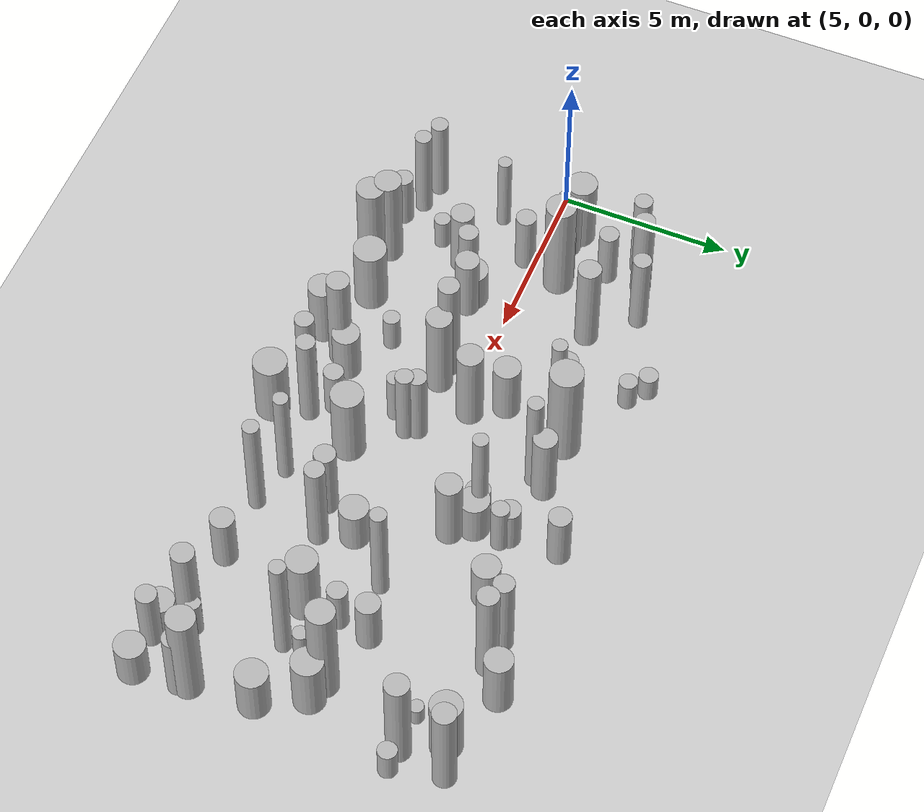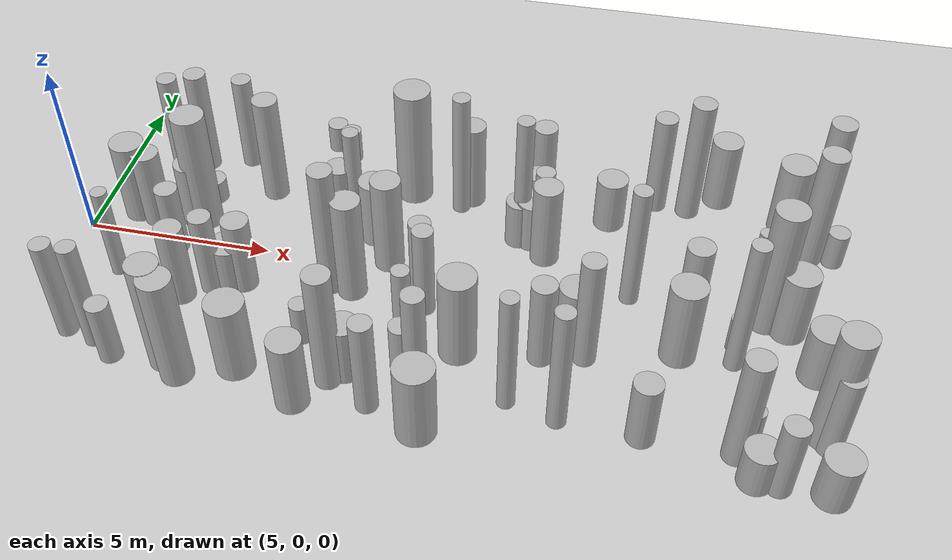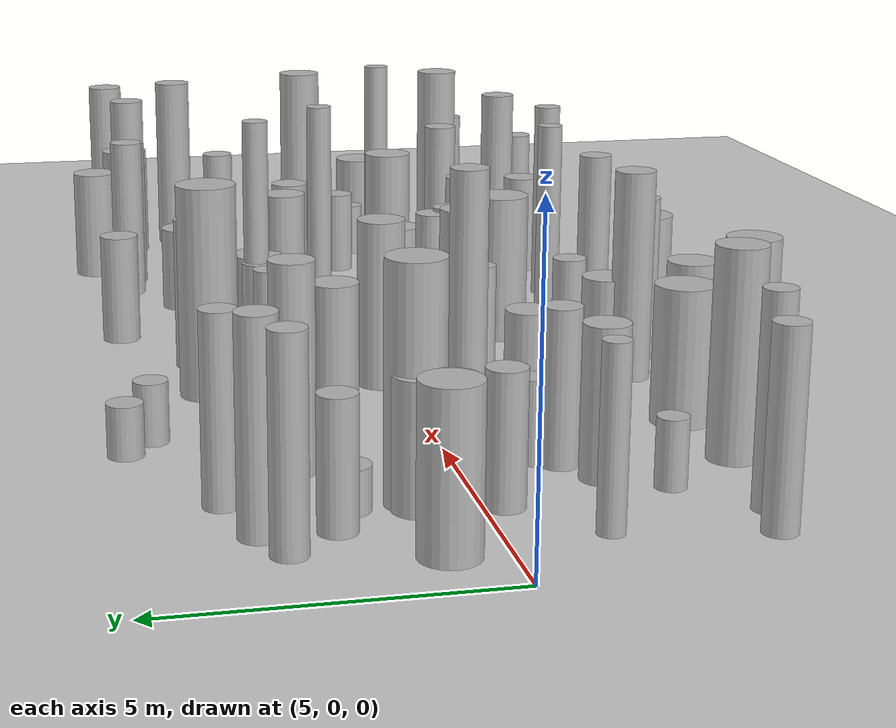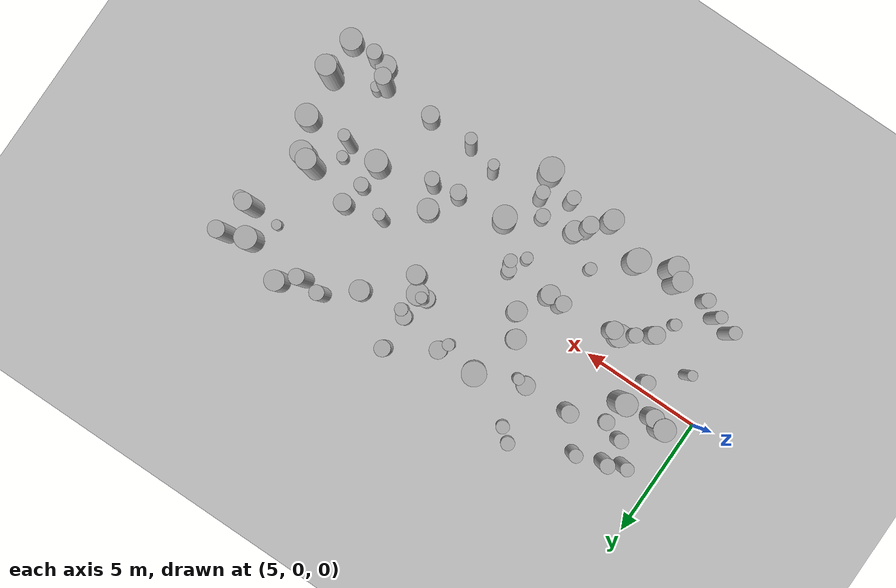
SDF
<sdf version="1.4">
 <world name="default">
  <include><uri>model://ground_plane</uri></include>
  <include><uri>model://sun</uri></include>
  <model name="forest">
   <static>true</static>
   <link name="cylinder3">
    <pose>22.47887445626342 -4.178614569205978 1.642320482933423 0 0 0</pose>
    <visual name="visual">
     <geometry>
      <cylinder><radius>0.33752390658815884</radius><length>3.284640965866846</length></cylinder>
     </geometry>
    </visual>
    <collision name="collision">
     <geometry>
      <cylinder><radius>0.33752390658815884</radius><length>3.284640965866846</length></cylinder>
     </geometry>
     <max_contacts>0</max_contacts>
    </collision>
   </link>
   <link name="cylinder4">
    <pose>14.5302731458887 -3.3634032457613463 0.8396608742634206 0 0 0</pose>
    <visual name="visual">
     <geometry>
      <cylinder><radius>0.2939214647751605</radius><length>1.6793217485268412</length></cylinder>
     </geometry>
    </visual>
    <collision name="collision">
     <geometry>
      <cylinder><radius>0.2939214647751605</radius><length>1.6793217485268412</length></cylinder>
     </geometry>
     <max_contacts>0</max_contacts>
    </collision>
   </link>
   <link name="cylinder5">
    <pose>18.362684909089495 -4.056848362321382 1.8538777930647994 0 0 0</pose>
    <visual name="visual">
     <geometry>
      <cylinder><radius>0.24213329332748434</radius><length>3.7077555861295988</length></cylinder>
     </geometry>
    </visual>
    <collision name="collision">
     <geometry>
      <cylinder><radius>0.24213329332748434</radius><length>3.7077555861295988</length></cylinder>
     </geometry>
     <max_contacts>0</max_contacts>
    </collision>
   </link>
   <link name="cylinder13">
    <pose>6.527799041859339 2.8709751118988 1.543872692518495 0 0 0</pose>
    <visual name="visual">
     <geometry><cylinder><radius>0.2687122442359387</radius><length>3.08774538503699</length></cylinder></geometry>
    </visual>
    <collision name="collision">
     <geometry><cylinder><radius>0.2687122442359387</radius><length>3.08774538503699</length></cylinder></geometry>
     <max_contacts>0</max_contacts>
    </collision>
   </link>
   <link name="cylinder16">
    <pose>10.526784670415744 -3.9707757080040986 1.1181079721017348 0 0 0</pose>
    <visual name="visual">
     <geometry>
      <cylinder><radius>0.48806112289139036</radius><length>2.2362159442034697</length></cylinder>
     </geometry>
    </visual>
    <collision name="collision">
     <geometry>
      <cylinder><radius>0.48806112289139036</radius><length>2.2362159442034697</length></cylinder>
     </geometry>
     <max_contacts>0</max_contacts>
    </collision>
   </link>
   <link name="cylinder18">
    <pose>7.4240206471141335 -4.251918299851472 0.9027344437147206 0 0 0</pose>
    <visual name="visual">
     <geometry>
      <cylinder><radius>0.2934277185561901</radius><length>1.8054688874294411</length></cylinder>
     </geometry>
    </visual>
    <collision name="collision">
     <geometry>
      <cylinder><radius>0.2934277185561901</radius><length>1.8054688874294411</length></cylinder>
     </geometry>
     <max_contacts>0</max_contacts>
    </collision>
   </link>
   <link name="cylinder19">
    <pose>16.74972533325966 4.350820737682305 0.9596957862691741 0 0 0</pose>
    <visual name="visual">
     <geometry>
      <cylinder><radius>0.330943244393582</radius><length>1.9193915725383481</length></cylinder>
     </geometry>
    </visual>
    <collision name="collision">
     <geometry>
      <cylinder><radius>0.330943244393582</radius><length>1.9193915725383481</length></cylinder>
     </geometry>
     <max_contacts>0</max_contacts>
    </collision>
   </link>
   <link name="cylinder21">
    <pose>13.937974852405098 -4.483488352646551 1.4200845603587593 0 0 0</pose>
    <visual name="visual">
     <geometry>
      <cylinder><radius>0.2839657664903985</radius><length>2.8401691207175186</length></cylinder>
     </geometry>
    </visual>
    <collision name="collision">
     <geometry>
      <cylinder><radius>0.2839657664903985</radius><length>2.8401691207175186</length></cylinder>
     </geometry>
     <max_contacts>0</max_contacts>
    </collision>
   </link>
   <link name="cylinder23">
    <pose>23.591305482721907 -0.12271582391579372 1.0166009628938495 0 0 0</pose>
    <visual name="visual">
     <geometry>
      <cylinder><radius>0.46206444477825864</radius><length>2.033201925787699</length></cylinder>
     </geometry>
    </visual>
    <collision name="collision">
     <geometry>
      <cylinder><radius>0.46206444477825864</radius><length>2.033201925787699</length></cylinder>
     </geometry>
     <max_contacts>0</max_contacts>
    </collision>
   </link>
   <link name="cylinder28">
    <pose>9.447276060925681 -1.22654271336321 0.6619986889347537 0 0 0</pose>
    <visual name="visual">
     <geometry>
      <cylinder><radius>0.4639562166751768</radius><length>1.3239973778695073</length></cylinder>
     </geometry>
    </visual>
    <collision name="collision">
     <geometry>
      <cylinder><radius>0.4639562166751768</radius><length>1.3239973778695073</length></cylinder>
     </geometry>
     <max_contacts>0</max_contacts>
    </collision>
   </link>
   <link name="cylinder31">
    <pose>9.23183586181289 -4.492843921649491 1.6333624161777784 0 0 0</pose>
    <visual name="visual">
     <geometry>
      <cylinder><radius>0.4136812708600509</radius><length>3.266724832355557</length></cylinder>
     </geometry>
    </visual>
    <collision name="collision">
     <geometry>
      <cylinder><radius>0.4136812708600509</radius><length>3.266724832355557</length></cylinder>
     </geometry>
     <max_contacts>0</max_contacts>
    </collision>
   </link>
   <link name="cylinder32">
    <pose>17.690212783013152 -2.2081494208562455 1.2673248724445154 0 0 0</pose>
    <visual name="visual">
     <geometry>
      <cylinder><radius>0.3199982120551544</radius><length>2.534649744889031</length></cylinder>
     </geometry>
    </visual>
    <collision name="collision">
     <geometry>
      <cylinder><radius>0.3199982120551544</radius><length>2.534649744889031</length></cylinder>
     </geometry>
     <max_contacts>0</max_contacts>
    </collision>
   </link>
   <link name="cylinder38">
    <pose>11.772968325162793 2.3713193202402127 1.2347113408801815 0 0 0</pose>
    <visual name="visual">
     <geometry>
      <cylinder><radius>0.22609128089160999</radius><length>2.469422681760363</length></cylinder>
     </geometry>
    </visual>
    <collision name="collision">
     <geometry>
      <cylinder><radius>0.22609128089160999</radius><length>2.469422681760363</length></cylinder>
     </geometry>
     <max_contacts>0</max_contacts>
    </collision>
   </link>
   <link name="cylinder49">
    <pose>15.244924607517909 -4.980480041222028 1.1135552518364316 0 0 0</pose>
    <visual name="visual">
     <geometry>
      <cylinder><radius>0.4966979918305741</radius><length>2.227110503672863</length></cylinder>
     </geometry>
    </visual>
    <collision name="collision">
     <geometry>
      <cylinder><radius>0.4966979918305741</radius><length>2.227110503672863</length></cylinder>
     </geometry>
     <max_contacts>0</max_contacts>
    </collision>
   </link>
   <link name="cylinder50">
    <pose>8.378996921225344 3.540174057202499 1.4279590609195483 0 0 0</pose>
    <visual name="visual">
     <geometry>
      <cylinder><radius>0.2707541495920716</radius><length>2.8559181218390965</length></cylinder>
     </geometry>
    </visual>
    <collision name="collision">
     <geometry>
      <cylinder><radius>0.2707541495920716</radius><length>2.8559181218390965</length></cylinder>
     </geometry>
     <max_contacts>0</max_contacts>
    </collision>
   </link>
   <link name="cylinder56">
    <pose>24.721061893447498 2.644003939974768 0.5281805942326888 0 0 0</pose>
    <visual name="visual">
     <geometry>
      <cylinder><radius>0.27994021403396574</radius><length>1.0563611884653776</length></cylinder>
     </geometry>
    </visual>
    <collision name="collision">
     <geometry>
      <cylinder><radius>0.27994021403396574</radius><length>1.0563611884653776</length></cylinder>
     </geometry>
     <max_contacts>0</max_contacts>
    </collision>
   </link>
   <link name="cylinder57">
    <pose>24.449768140828063 -3.287925950227529 1.765528564776506 0 0 0</pose>
    <visual name="visual">
     <geometry>
      <cylinder><radius>0.4193288217632054</radius><length>3.531057129553012</length></cylinder>
     </geometry>
    </visual>
    <collision name="collision">
     <geometry>
      <cylinder><radius>0.4193288217632054</radius><length>3.531057129553012</length></cylinder>
     </geometry>
     <max_contacts>0</max_contacts>
    </collision>
   </link>
   <link name="cylinder60">
    <pose>6.817045257781796 -3.8611030398118116 1.585568934438507 0 0 0</pose>
    <visual name="visual">
     <geometry>
      <cylinder><radius>0.24852022485572434</radius><length>3.171137868877014</length></cylinder>
     </geometry>
    </visual>
    <collision name="collision">
     <geometry>
      <cylinder><radius>0.24852022485572434</radius><length>3.171137868877014</length></cylinder>
     </geometry>
     <max_contacts>0</max_contacts>
    </collision>
   </link>
   <link name="cylinder65">
    <pose>7.1845712540753865 2.1157544129979486 0.980823992264615 0 0 0</pose>
    <visual name="visual">
     <geometry><cylinder><radius>0.2899675098013318</radius><length>1.96164798452923</length></cylinder></geometry>
    </visual>
    <collision name="collision">
     <geometry><cylinder><radius>0.2899675098013318</radius><length>1.96164798452923</length></cylinder></geometry>
     <max_contacts>0</max_contacts>
    </collision>
   </link>
   <link name="cylinder69">
    <pose>6.425788574674364 -1.4514245802739767 1.351874875211875 0 0 0</pose>
    <visual name="visual">
     <geometry>
      <cylinder><radius>0.20414401549664019</radius><length>2.70374975042375</length></cylinder>
     </geometry>
    </visual>
    <collision name="collision">
     <geometry>
      <cylinder><radius>0.20414401549664019</radius><length>2.70374975042375</length></cylinder>
     </geometry>
     <max_contacts>0</max_contacts>
    </collision>
   </link>
   <link name="cylinder70">
    <pose>14.10962209428424 -1.669597794237422 0.8710236489371816 0 0 0</pose>
    <visual name="visual">
     <geometry>
      <cylinder><radius>0.24028268609505826</radius><length>1.7420472978743633</length></cylinder>
     </geometry>
    </visual>
    <collision name="collision">
     <geometry>
      <cylinder><radius>0.24028268609505826</radius><length>1.7420472978743633</length></cylinder>
     </geometry>
     <max_contacts>0</max_contacts>
    </collision>
   </link>
   <link name="cylinder71">
    <pose>12.836077382744229 -3.9213283168496362 1.7799488736250846 0 0 0</pose>
    <visual name="visual">
     <geometry>
      <cylinder><radius>0.3387179983455981</radius><length>3.559897747250169</length></cylinder>
     </geometry>
    </visual>
    <collision name="collision">
     <geometry>
      <cylinder><radius>0.3387179983455981</radius><length>3.559897747250169</length></cylinder>
     </geometry>
     <max_contacts>0</max_contacts>
    </collision>
   </link>
   <link name="cylinder76">
    <pose>14.934039233461384 3.1806282967403963 1.2902992635008506 0 0 0</pose>
    <visual name="visual">
     <geometry>
      <cylinder><radius>0.35341982849496534</radius><length>2.580598527001701</length></cylinder>
     </geometry>
    </visual>
    <collision name="collision">
     <geometry>
      <cylinder><radius>0.35341982849496534</radius><length>2.580598527001701</length></cylinder>
     </geometry>
     <max_contacts>0</max_contacts>
    </collision>
   </link>
   <link name="cylinder78">
    <pose>13.17408756718443 -3.5818733198657613 0.844874332020402 0 0 0</pose>
    <visual name="visual">
     <geometry>
      <cylinder><radius>0.40805120420738106</radius><length>1.689748664040804</length></cylinder>
     </geometry>
    </visual>
    <collision name="collision">
     <geometry>
      <cylinder><radius>0.40805120420738106</radius><length>1.689748664040804</length></cylinder>
     </geometry>
     <max_contacts>0</max_contacts>
    </collision>
   </link>
   <link name="cylinder81">
    <pose>18.761883628997865 3.008375247907537 0.7686204943772541 0 0 0</pose>
    <visual name="visual">
     <geometry>
      <cylinder><radius>0.41461164967951025</radius><length>1.5372409887545082</length></cylinder>
     </geometry>
    </visual>
    <collision name="collision">
     <geometry>
      <cylinder><radius>0.41461164967951025</radius><length>1.5372409887545082</length></cylinder>
     </geometry>
     <max_contacts>0</max_contacts>
    </collision>
   </link>
   <link name="cylinder83">
    <pose>6.023353920046702 -3.6814882866755028 1.470136975742704 0 0 0</pose>
    <visual name="visual">
     <geometry>
      <cylinder><radius>0.2607214959013141</radius><length>2.940273951485408</length></cylinder>
     </geometry>
    </visual>
    <collision name="collision">
     <geometry>
      <cylinder><radius>0.2607214959013141</radius><length>2.940273951485408</length></cylinder>
     </geometry>
     <max_contacts>0</max_contacts>
    </collision>
   </link>
   <link name="cylinder84">
    <pose>20.964975878639045 -1.436609062028845 1.1974116911122923 0 0 0</pose>
    <visual name="visual">
     <geometry>
      <cylinder><radius>0.45776882402253655</radius><length>2.3948233822245846</length></cylinder>
     </geometry>
    </visual>
    <collision name="collision">
     <geometry>
      <cylinder><radius>0.45776882402253655</radius><length>2.3948233822245846</length></cylinder>
     </geometry>
     <max_contacts>0</max_contacts>
    </collision>
   </link>
   <link name="cylinder86">
    <pose>23.018340553018845 0.06344995393530173 1.8987352282740533 0 0 0</pose>
    <visual name="visual">
     <geometry>
      <cylinder><radius>0.41254935912584434</radius><length>3.7974704565481066</length></cylinder>
     </geometry>
    </visual>
    <collision name="collision">
     <geometry>
      <cylinder><radius>0.41254935912584434</radius><length>3.7974704565481066</length></cylinder>
     </geometry>
     <max_contacts>0</max_contacts>
    </collision>
   </link>
   <link name="cylinder87">
    <pose>24.36131951456332 4.116075351658193 1.7056352555718992 0 0 0</pose>
    <visual name="visual">
     <geometry>
      <cylinder><radius>0.3376474049315949</radius><length>3.4112705111437984</length></cylinder>
     </geometry>
    </visual>
    <collision name="collision">
     <geometry>
      <cylinder><radius>0.3376474049315949</radius><length>3.4112705111437984</length></cylinder>
     </geometry>
     <max_contacts>0</max_contacts>
    </collision>
   </link>
   <link name="cylinder93">
    <pose>13.30838271192249 3.1433814193410647 1.7605735277107786 0 0 0</pose>
    <visual name="visual">
     <geometry>
      <cylinder><radius>0.4868501336656447</radius><length>3.521147055421557</length></cylinder>
     </geometry>
    </visual>
    <collision name="collision">
     <geometry>
      <cylinder><radius>0.4868501336656447</radius><length>3.521147055421557</length></cylinder>
     </geometry>
     <max_contacts>0</max_contacts>
    </collision>
   </link>
   <link name="cylinder94">
    <pose>24.591810411638512 -4.876550889605959 0.6875817090059002 0 0 0</pose>
    <visual name="visual">
     <geometry>
      <cylinder><radius>0.4532019496774934</radius><length>1.3751634180118004</length></cylinder>
     </geometry>
    </visual>
    <collision name="collision">
     <geometry>
      <cylinder><radius>0.4532019496774934</radius><length>1.3751634180118004</length></cylinder>
     </geometry>
     <max_contacts>0</max_contacts>
    </collision>
   </link>
   <link name="cylinder96">
    <pose>14.42301588554755 -0.8533797484087193 1.3115467106881926 0 0 0</pose>
    <visual name="visual">
     <geometry>
      <cylinder><radius>0.2856992904782249</radius><length>2.6230934213763852</length></cylinder>
     </geometry>
    </visual>
    <collision name="collision">
     <geometry>
      <cylinder><radius>0.2856992904782249</radius><length>2.6230934213763852</length></cylinder>
     </geometry>
     <max_contacts>0</max_contacts>
    </collision>
   </link>
   <link name="cylinder97">
    <pose>9.488816892777379 2.3559886452171543 1.599064454588988 0 0 0</pose>
    <visual name="visual">
     <geometry>
      <cylinder><radius>0.3426206648430491</radius><length>3.198128909177976</length></cylinder>
     </geometry>
    </visual>
    <collision name="collision">
     <geometry>
      <cylinder><radius>0.3426206648430491</radius><length>3.198128909177976</length></cylinder>
     </geometry>
     <max_contacts>0</max_contacts>
    </collision>
   </link>
   <link name="cylinder98">
    <pose>7.913277019350353 1.8253304376781232 0.3373630469202576 0 0 0</pose>
    <visual name="visual">
     <geometry>
      <cylinder><radius>0.3207292804657071</radius><length>0.6747260938405152</length></cylinder>
     </geometry>
    </visual>
    <collision name="collision">
     <geometry>
      <cylinder><radius>0.3207292804657071</radius><length>0.6747260938405152</length></cylinder>
     </geometry>
     <max_contacts>0</max_contacts>
    </collision>
   </link>
   <link name="cylinder99">
    <pose>17.250758651355532 1.2876802213538916 1.224547317464865 0 0 0</pose>
    <visual name="visual">
     <geometry><cylinder><radius>0.3811344316260742</radius><length>2.44909463492973</length></cylinder></geometry>
    </visual>
    <collision name="collision">
     <geometry><cylinder><radius>0.3811344316260742</radius><length>2.44909463492973</length></cylinder></geometry>
     <max_contacts>0</max_contacts>
    </collision>
   </link>
   <link name="cylinder105">
    <pose>18.359290180835345 -1.0785733769576575 0.7356376778762803 0 0 0</pose>
    <visual name="visual">
     <geometry>
      <cylinder><radius>0.43109934591988736</radius><length>1.4712753557525606</length></cylinder>
     </geometry>
    </visual>
    <collision name="collision">
     <geometry>
      <cylinder><radius>0.43109934591988736</radius><length>1.4712753557525606</length></cylinder>
     </geometry>
     <max_contacts>0</max_contacts>
    </collision>
   </link>
   <link name="cylinder106">
    <pose>8.797738047917584 -4.132603483287523 1.6395599425629985 0 0 0</pose>
    <visual name="visual">
     <geometry>
      <cylinder><radius>0.4004202880946797</radius><length>3.279119885125997</length></cylinder>
     </geometry>
    </visual>
    <collision name="collision">
     <geometry>
      <cylinder><radius>0.4004202880946797</radius><length>3.279119885125997</length></cylinder>
     </geometry>
     <max_contacts>0</max_contacts>
    </collision>
   </link>
   <link name="cylinder112">
    <pose>20.312491145101397 -4.119083398005827 0.9621082513022088 0 0 0</pose>
    <visual name="visual">
     <geometry>
      <cylinder><radius>0.3529281954426491</radius><length>1.9242165026044176</length></cylinder>
     </geometry>
    </visual>
    <collision name="collision">
     <geometry>
      <cylinder><radius>0.3529281954426491</radius><length>1.9242165026044176</length></cylinder>
     </geometry>
     <max_contacts>0</max_contacts>
    </collision>
   </link>
   <link name="cylinder119">
    <pose>7.868676617294128 -2.8247099277777323 0.5354448152293785 0 0 0</pose>
    <visual name="visual">
     <geometry>
      <cylinder><radius>0.24026595648989432</radius><length>1.070889630458757</length></cylinder>
     </geometry>
    </visual>
    <collision name="collision">
     <geometry>
      <cylinder><radius>0.24026595648989432</radius><length>1.070889630458757</length></cylinder>
     </geometry>
     <max_contacts>0</max_contacts>
    </collision>
   </link>
   <link name="cylinder120">
    <pose>21.635465776234923 4.5317991502547805 1.0437399938678877 0 0 0</pose>
    <visual name="visual">
     <geometry>
      <cylinder><radius>0.411888447471063</radius><length>2.0874799877357755</length></cylinder>
     </geometry>
    </visual>
    <collision name="collision">
     <geometry>
      <cylinder><radius>0.411888447471063</radius><length>2.0874799877357755</length></cylinder>
     </geometry>
     <max_contacts>0</max_contacts>
    </collision>
   </link>
   <link name="cylinder121">
    <pose>23.439863491121642 -4.875254050461607 1.1071875540702996 0 0 0</pose>
    <visual name="visual">
     <geometry>
      <cylinder><radius>0.30713938901608967</radius><length>2.214375108140599</length></cylinder>
     </geometry>
    </visual>
    <collision name="collision">
     <geometry>
      <cylinder><radius>0.30713938901608967</radius><length>2.214375108140599</length></cylinder>
     </geometry>
     <max_contacts>0</max_contacts>
    </collision>
   </link>
   <link name="cylinder122">
    <pose>7.74344929973838 0.8697418842314502 0.981498908207938 0 0 0</pose>
    <visual name="visual">
     <geometry>
      <cylinder><radius>0.4086199873079246</radius><length>1.962997816415876</length></cylinder>
     </geometry>
    </visual>
    <collision name="collision">
     <geometry>
      <cylinder><radius>0.4086199873079246</radius><length>1.962997816415876</length></cylinder>
     </geometry>
     <max_contacts>0</max_contacts>
    </collision>
   </link>
   <link name="cylinder124">
    <pose>18.745103049111478 -2.0150255058308653 1.6631944352598773 0 0 0</pose>
    <visual name="visual">
     <geometry>
      <cylinder><radius>0.29209145761588795</radius><length>3.3263888705197546</length></cylinder>
     </geometry>
    </visual>
    <collision name="collision">
     <geometry>
      <cylinder><radius>0.29209145761588795</radius><length>3.3263888705197546</length></cylinder>
     </geometry>
     <max_contacts>0</max_contacts>
    </collision>
   </link>
   <link name="cylinder125">
    <pose>24.28484677751681 -1.4348304390415412 0.8265046835300012 0 0 0</pose>
    <visual name="visual">
     <geometry>
      <cylinder><radius>0.46730695647459125</radius><length>1.6530093670600023</length></cylinder>
     </geometry>
    </visual>
    <collision name="collision">
     <geometry>
      <cylinder><radius>0.46730695647459125</radius><length>1.6530093670600023</length></cylinder>
     </geometry>
     <max_contacts>0</max_contacts>
    </collision>
   </link>
   <link name="cylinder126">
    <pose>14.704265806915764 2.7841919738864913 1.8667542538427861 0 0 0</pose>
    <visual name="visual">
     <geometry>
      <cylinder><radius>0.23872528736286946</radius><length>3.7335085076855723</length></cylinder>
     </geometry>
    </visual>
    <collision name="collision">
     <geometry>
      <cylinder><radius>0.23872528736286946</radius><length>3.7335085076855723</length></cylinder>
     </geometry>
     <max_contacts>0</max_contacts>
    </collision>
   </link>
   <link name="cylinder127">
    <pose>7.211283098204682 3.1747129568757853 1.562202102027881 0 0 0</pose>
    <visual name="visual">
     <geometry>
      <cylinder><radius>0.30043938837338796</radius><length>3.124404204055762</length></cylinder>
     </geometry>
    </visual>
    <collision name="collision">
     <geometry>
      <cylinder><radius>0.30043938837338796</radius><length>3.124404204055762</length></cylinder>
     </geometry>
     <max_contacts>0</max_contacts>
    </collision>
   </link>
   <link name="cylinder129">
    <pose>9.798624180086144 -1.2412656075634398 1.0922095586414877 0 0 0</pose>
    <visual name="visual">
     <geometry>
      <cylinder><radius>0.35493811105969697</radius><length>2.1844191172829754</length></cylinder>
     </geometry>
    </visual>
    <collision name="collision">
     <geometry>
      <cylinder><radius>0.35493811105969697</radius><length>2.1844191172829754</length></cylinder>
     </geometry>
     <max_contacts>0</max_contacts>
    </collision>
   </link>
   <link name="cylinder133">
    <pose>11.834653141566044 -2.751419692367567 0.60134103268791 0 0 0</pose>
    <visual name="visual">
     <geometry><cylinder><radius>0.2528871602935863</radius><length>1.20268206537582</length></cylinder></geometry>
    </visual>
    <collision name="collision">
     <geometry><cylinder><radius>0.2528871602935863</radius><length>1.20268206537582</length></cylinder></geometry>
     <max_contacts>0</max_contacts>
    </collision>
   </link>
   <link name="cylinder134">
    <pose>14.57061277883954 -1.1711403731254268 1.3421453774948577 0 0 0</pose>
    <visual name="visual">
     <geometry>
      <cylinder><radius>0.26722768994845486</radius><length>2.6842907549897155</length></cylinder>
     </geometry>
    </visual>
    <collision name="collision">
     <geometry>
      <cylinder><radius>0.26722768994845486</radius><length>2.6842907549897155</length></cylinder>
     </geometry>
     <max_contacts>0</max_contacts>
    </collision>
   </link>
   <link name="cylinder136">
    <pose>19.936982477817885 3.976615692129279 1.5030572316617026 0 0 0</pose>
    <visual name="visual">
     <geometry>
      <cylinder><radius>0.30065944329505334</radius><length>3.006114463323405</length></cylinder>
     </geometry>
    </visual>
    <collision name="collision">
     <geometry>
      <cylinder><radius>0.30065944329505334</radius><length>3.006114463323405</length></cylinder>
     </geometry>
     <max_contacts>0</max_contacts>
    </collision>
   </link>
   <link name="cylinder138">
    <pose>19.601839782491517 0.22728854278196842 1.82195127764592 0 0 0</pose>
    <visual name="visual">
     <geometry><cylinder><radius>0.2411154136852974</radius><length>3.64390255529184</length></cylinder></geometry>
    </visual>
    <collision name="collision">
     <geometry><cylinder><radius>0.2411154136852974</radius><length>3.64390255529184</length></cylinder></geometry>
     <max_contacts>0</max_contacts>
    </collision>
   </link>
   <link name="cylinder140">
    <pose>22.315247378894405 -1.467973843440915 1.9984439381924166 0 0 0</pose>
    <visual name="visual">
     <geometry><cylinder><radius>0.23916220385718</radius><length>3.9968878763848332</length></cylinder></geometry>
    </visual>
    <collision name="collision">
     <geometry><cylinder><radius>0.23916220385718</radius><length>3.9968878763848332</length></cylinder></geometry>
     <max_contacts>0</max_contacts>
    </collision>
   </link>
   <link name="cylinder147">
    <pose>16.83404434869373 1.867577256125439 0.7200451980488228 0 0 0</pose>
    <visual name="visual">
     <geometry>
      <cylinder><radius>0.4480241145157242</radius><length>1.4400903960976457</length></cylinder>
     </geometry>
    </visual>
    <collision name="collision">
     <geometry>
      <cylinder><radius>0.4480241145157242</radius><length>1.4400903960976457</length></cylinder>
     </geometry>
     <max_contacts>0</max_contacts>
    </collision>
   </link>
   <link name="cylinder148">
    <pose>12.611787371070179 -0.938812085086723 1.5493056053851066 0 0 0</pose>
    <visual name="visual">
     <geometry>
      <cylinder><radius>0.3810525512640994</radius><length>3.0986112107702133</length></cylinder>
     </geometry>
    </visual>
    <collision name="collision">
     <geometry>
      <cylinder><radius>0.3810525512640994</radius><length>3.0986112107702133</length></cylinder>
     </geometry>
     <max_contacts>0</max_contacts>
    </collision>
   </link>
   <link name="cylinder150">
    <pose>21.20559215078533 0.5823201397691928 0.8973337528720459 0 0 0</pose>
    <visual name="visual">
     <geometry>
      <cylinder><radius>0.36001605228783173</radius><length>1.7946675057440917</length></cylinder>
     </geometry>
    </visual>
    <collision name="collision">
     <geometry>
      <cylinder><radius>0.36001605228783173</radius><length>1.7946675057440917</length></cylinder>
     </geometry>
     <max_contacts>0</max_contacts>
    </collision>
   </link>
   <link name="cylinder152">
    <pose>17.008954282425243 2.7060132223667637 0.8603971847256453 0 0 0</pose>
    <visual name="visual">
     <geometry>
      <cylinder><radius>0.2665822556534287</radius><length>1.7207943694512906</length></cylinder>
     </geometry>
    </visual>
    <collision name="collision">
     <geometry>
      <cylinder><radius>0.2665822556534287</radius><length>1.7207943694512906</length></cylinder>
     </geometry>
     <max_contacts>0</max_contacts>
    </collision>
   </link>
   <link name="cylinder156">
    <pose>15.683023988797558 -2.4236316600375583 1.3002164369585785 0 0 0</pose>
    <visual name="visual">
     <geometry>
      <cylinder><radius>0.4764663532912751</radius><length>2.600432873917157</length></cylinder>
     </geometry>
    </visual>
    <collision name="collision">
     <geometry>
      <cylinder><radius>0.4764663532912751</radius><length>2.600432873917157</length></cylinder>
     </geometry>
     <max_contacts>0</max_contacts>
    </collision>
   </link>
   <link name="cylinder158">
    <pose>12.704353913858128 1.162492152817613 0.9794294030130909 0 0 0</pose>
    <visual name="visual">
     <geometry>
      <cylinder><radius>0.401471417582567</radius><length>1.9588588060261818</length></cylinder>
     </geometry>
    </visual>
    <collision name="collision">
     <geometry>
      <cylinder><radius>0.401471417582567</radius><length>1.9588588060261818</length></cylinder>
     </geometry>
     <max_contacts>0</max_contacts>
    </collision>
   </link>
   <link name="cylinder161">
    <pose>10.655915246901223 4.693703186912309 0.41706245271558673 0 0 0</pose>
    <visual name="visual">
     <geometry>
      <cylinder><radius>0.2824760701621253</radius><length>0.8341249054311735</length></cylinder>
     </geometry>
    </visual>
    <collision name="collision">
     <geometry>
      <cylinder><radius>0.2824760701621253</radius><length>0.8341249054311735</length></cylinder>
     </geometry>
     <max_contacts>0</max_contacts>
    </collision>
   </link>
   <link name="cylinder164">
    <pose>20.830482799801473 3.8859108264647073 1.8367457888469463 0 0 0</pose>
    <visual name="visual">
     <geometry>
      <cylinder><radius>0.31566613888274914</radius><length>3.6734915776938926</length></cylinder>
     </geometry>
    </visual>
    <collision name="collision">
     <geometry>
      <cylinder><radius>0.31566613888274914</radius><length>3.6734915776938926</length></cylinder>
     </geometry>
     <max_contacts>0</max_contacts>
    </collision>
   </link>
   <link name="cylinder166">
    <pose>22.919260014232286 -4.807501938664767 0.5856843796021708 0 0 0</pose>
    <visual name="visual">
     <geometry>
      <cylinder><radius>0.42274711631882317</radius><length>1.1713687592043416</length></cylinder>
     </geometry>
    </visual>
    <collision name="collision">
     <geometry>
      <cylinder><radius>0.42274711631882317</radius><length>1.1713687592043416</length></cylinder>
     </geometry>
     <max_contacts>0</max_contacts>
    </collision>
   </link>
   <link name="cylinder171">
    <pose>15.011161478519377 -3.943366435161523 1.700438863109222 0 0 0</pose>
    <visual name="visual">
     <geometry>
      <cylinder><radius>0.2800580918746616</radius><length>3.400877726218444</length></cylinder>
     </geometry>
    </visual>
    <collision name="collision">
     <geometry>
      <cylinder><radius>0.2800580918746616</radius><length>3.400877726218444</length></cylinder>
     </geometry>
     <max_contacts>0</max_contacts>
    </collision>
   </link>
   <link name="cylinder175">
    <pose>11.354045686733308 2.4294937818673903 0.5944573441884913 0 0 0</pose>
    <visual name="visual">
     <geometry>
      <cylinder><radius>0.37552963373015347</radius><length>1.1889146883769826</length></cylinder>
     </geometry>
    </visual>
    <collision name="collision">
     <geometry>
      <cylinder><radius>0.37552963373015347</radius><length>1.1889146883769826</length></cylinder>
     </geometry>
     <max_contacts>0</max_contacts>
    </collision>
   </link>
   <link name="cylinder179">
    <pose>23.468643897426958 3.7953312293025085 1.0854588914673498 0 0 0</pose>
    <visual name="visual">
     <geometry>
      <cylinder><radius>0.46152541605067976</radius><length>2.1709177829346995</length></cylinder>
     </geometry>
    </visual>
    <collision name="collision">
     <geometry>
      <cylinder><radius>0.46152541605067976</radius><length>2.1709177829346995</length></cylinder>
     </geometry>
     <max_contacts>0</max_contacts>
    </collision>
   </link>
   <link name="cylinder181">
    <pose>13.288181221257325 0.2748460930679073 1.4118013260786937 0 0 0</pose>
    <visual name="visual">
     <geometry>
      <cylinder><radius>0.3924128762584605</radius><length>2.8236026521573874</length></cylinder>
     </geometry>
    </visual>
    <collision name="collision">
     <geometry>
      <cylinder><radius>0.3924128762584605</radius><length>2.8236026521573874</length></cylinder>
     </geometry>
     <max_contacts>0</max_contacts>
    </collision>
   </link>
   <link name="cylinder184">
    <pose>11.187107130648855 4.267193239817155 0.49355436638987227 0 0 0</pose>
    <visual name="visual">
     <geometry>
      <cylinder><radius>0.27069613704886675</radius><length>0.9871087327797445</length></cylinder>
     </geometry>
    </visual>
    <collision name="collision">
     <geometry>
      <cylinder><radius>0.27069613704886675</radius><length>0.9871087327797445</length></cylinder>
     </geometry>
     <max_contacts>0</max_contacts>
    </collision>
   </link>
   <link name="cylinder187">
    <pose>8.377558804755168 -1.979781553826153 1.1719907564069454 0 0 0</pose>
    <visual name="visual">
     <geometry>
      <cylinder><radius>0.3516754638980498</radius><length>2.3439815128138908</length></cylinder>
     </geometry>
    </visual>
    <collision name="collision">
     <geometry>
      <cylinder><radius>0.3516754638980498</radius><length>2.3439815128138908</length></cylinder>
     </geometry>
     <max_contacts>0</max_contacts>
    </collision>
   </link>
   <link name="cylinder190">
    <pose>9.029983828921196 -1.5285029398612213 1.217785284283228 0 0 0</pose>
    <visual name="visual">
     <geometry>
      <cylinder><radius>0.2946765677642433</radius><length>2.435570568566456</length></cylinder>
     </geometry>
    </visual>
    <collision name="collision">
     <geometry>
      <cylinder><radius>0.2946765677642433</radius><length>2.435570568566456</length></cylinder>
     </geometry>
     <max_contacts>0</max_contacts>
    </collision>
   </link>
   <link name="cylinder192">
    <pose>24.542930300520496 -3.553998915705152 1.2410413734927996 0 0 0</pose>
    <visual name="visual">
     <geometry>
      <cylinder><radius>0.30433703932786277</radius><length>2.4820827469855993</length></cylinder>
     </geometry>
    </visual>
    <collision name="collision">
     <geometry>
      <cylinder><radius>0.30433703932786277</radius><length>2.4820827469855993</length></cylinder>
     </geometry>
     <max_contacts>0</max_contacts>
    </collision>
   </link>
   <link name="cylinder193">
    <pose>12.03282790444522 -0.8896927455265322 1.9442183412194325 0 0 0</pose>
    <visual name="visual">
     <geometry><cylinder><radius>0.312385464071689</radius><length>3.888436682438865</length></cylinder></geometry>
    </visual>
    <collision name="collision">
     <geometry><cylinder><radius>0.312385464071689</radius><length>3.888436682438865</length></cylinder></geometry>
     <max_contacts>0</max_contacts>
    </collision>
   </link>
   <link name="cylinder195">
    <pose>12.19802645566044 -4.72856432658419 1.0758789328737783 0 0 0</pose>
    <visual name="visual">
     <geometry>
      <cylinder><radius>0.41974115275905044</radius><length>2.1517578657475567</length></cylinder>
     </geometry>
    </visual>
    <collision name="collision">
     <geometry>
      <cylinder><radius>0.41974115275905044</radius><length>2.1517578657475567</length></cylinder>
     </geometry>
     <max_contacts>0</max_contacts>
    </collision>
   </link>
   <link name="cylinder198">
    <pose>24.101143260206726 2.686726752902433 1.7525328077820115 0 0 0</pose>
    <visual name="visual">
     <geometry>
      <cylinder><radius>0.3546464022260548</radius><length>3.505065615564023</length></cylinder>
     </geometry>
    </visual>
    <collision name="collision">
     <geometry>
      <cylinder><radius>0.3546464022260548</radius><length>3.505065615564023</length></cylinder>
     </geometry>
     <max_contacts>0</max_contacts>
    </collision>
   </link>
   <link name="cylinder201">
    <pose>6.096449552662129 0.8426628696469765 1.2099961426303623 0 0 0</pose>
    <visual name="visual">
     <geometry>
      <cylinder><radius>0.4473870168661197</radius><length>2.4199922852607245</length></cylinder>
     </geometry>
    </visual>
    <collision name="collision">
     <geometry>
      <cylinder><radius>0.4473870168661197</radius><length>2.4199922852607245</length></cylinder>
     </geometry>
     <max_contacts>0</max_contacts>
    </collision>
   </link>
   <link name="cylinder210">
    <pose>16.782380350160324 2.8927561152734196 0.7381402010477314 0 0 0</pose>
    <visual name="visual">
     <geometry>
      <cylinder><radius>0.32904813401048305</radius><length>1.4762804020954627</length></cylinder>
     </geometry>
    </visual>
    <collision name="collision">
     <geometry>
      <cylinder><radius>0.32904813401048305</radius><length>1.4762804020954627</length></cylinder>
     </geometry>
     <max_contacts>0</max_contacts>
    </collision>
   </link>
   <link name="cylinder211">
    <pose>16.52409288876772 1.9050767647494116 1.971744780329648 0 0 0</pose>
    <visual name="visual">
     <geometry>
      <cylinder><radius>0.22899169380012743</radius><length>3.943489560659296</length></cylinder>
     </geometry>
    </visual>
    <collision name="collision">
     <geometry>
      <cylinder><radius>0.22899169380012743</radius><length>3.943489560659296</length></cylinder>
     </geometry>
     <max_contacts>0</max_contacts>
    </collision>
   </link>
   <link name="cylinder219">
    <pose>7.966440168594666 0.8853789847910889 1.7796732420049182 0 0 0</pose>
    <visual name="visual">
     <geometry>
      <cylinder><radius>0.4431766727919293</radius><length>3.5593464840098363</length></cylinder>
     </geometry>
    </visual>
    <collision name="collision">
     <geometry>
      <cylinder><radius>0.4431766727919293</radius><length>3.5593464840098363</length></cylinder>
     </geometry>
     <max_contacts>0</max_contacts>
    </collision>
   </link>
   <link name="cylinder220">
    <pose>17.11681094691874 -3.7410560740891876 1.7827375854251426 0 0 0</pose>
    <visual name="visual">
     <geometry>
      <cylinder><radius>0.2243366168150352</radius><length>3.565475170850285</length></cylinder>
     </geometry>
    </visual>
    <collision name="collision">
     <geometry>
      <cylinder><radius>0.2243366168150352</radius><length>3.565475170850285</length></cylinder>
     </geometry>
     <max_contacts>0</max_contacts>
    </collision>
   </link>
   <link name="cylinder222">
    <pose>22.984343602768412 2.7391917579409766 0.3098577196565621 0 0 0</pose>
    <visual name="visual">
     <geometry>
      <cylinder><radius>0.20876975124072422</radius><length>0.6197154393131242</length></cylinder>
     </geometry>
    </visual>
    <collision name="collision">
     <geometry>
      <cylinder><radius>0.20876975124072422</radius><length>0.6197154393131242</length></cylinder>
     </geometry>
     <max_contacts>0</max_contacts>
    </collision>
   </link>
   <link name="cylinder223">
    <pose>7.589697238713754 -0.30479260133492225 1.0182496635428997 0 0 0</pose>
    <visual name="visual">
     <geometry>
      <cylinder><radius>0.303058569270539</radius><length>2.0364993270857994</length></cylinder>
     </geometry>
    </visual>
    <collision name="collision">
     <geometry>
      <cylinder><radius>0.303058569270539</radius><length>2.0364993270857994</length></cylinder>
     </geometry>
     <max_contacts>0</max_contacts>
    </collision>
   </link>
   <link name="cylinder234">
    <pose>6.636188694363909 0.6830512034230276 1.1377705712628738 0 0 0</pose>
    <visual name="visual">
     <geometry>
      <cylinder><radius>0.37055935524756634</radius><length>2.2755411425257477</length></cylinder>
     </geometry>
    </visual>
    <collision name="collision">
     <geometry>
      <cylinder><radius>0.37055935524756634</radius><length>2.2755411425257477</length></cylinder>
     </geometry>
     <max_contacts>0</max_contacts>
    </collision>
   </link>
   <link name="cylinder239">
    <pose>22.74258029101604 -3.8967109015940116 0.6588055624909723 0 0 0</pose>
    <visual name="visual">
     <geometry>
      <cylinder><radius>0.22573487391282673</radius><length>1.3176111249819447</length></cylinder>
     </geometry>
    </visual>
    <collision name="collision">
     <geometry>
      <cylinder><radius>0.22573487391282673</radius><length>1.3176111249819447</length></cylinder>
     </geometry>
     <max_contacts>0</max_contacts>
    </collision>
   </link>
   <link name="cylinder242">
    <pose>16.465091238311267 1.8238781967976925 0.6886900205026785 0 0 0</pose>
    <visual name="visual">
     <geometry>
      <cylinder><radius>0.3614430451014571</radius><length>1.377380041005357</length></cylinder>
     </geometry>
    </visual>
    <collision name="collision">
     <geometry>
      <cylinder><radius>0.3614430451014571</radius><length>1.377380041005357</length></cylinder>
     </geometry>
     <max_contacts>0</max_contacts>
    </collision>
   </link>
   <link name="cylinder244">
    <pose>21.02456093398863 -0.4000622033572965 0.7884011789299346 0 0 0</pose>
    <visual name="visual">
     <geometry>
      <cylinder><radius>0.2946122378974096</radius><length>1.576802357859869</length></cylinder>
     </geometry>
    </visual>
    <collision name="collision">
     <geometry>
      <cylinder><radius>0.2946122378974096</radius><length>1.576802357859869</length></cylinder>
     </geometry>
     <max_contacts>0</max_contacts>
    </collision>
   </link>
   <link name="cylinder248">
    <pose>22.327256447851852 -0.9204231766081126 0.5151366267498166 0 0 0</pose>
    <visual name="visual">
     <geometry>
      <cylinder><radius>0.228848364532776</radius><length>1.0302732534996333</length></cylinder>
     </geometry>
    </visual>
    <collision name="collision">
     <geometry>
      <cylinder><radius>0.228848364532776</radius><length>1.0302732534996333</length></cylinder>
     </geometry>
     <max_contacts>0</max_contacts>
    </collision>
   </link>
  </model>
 </world>
</sdf>
